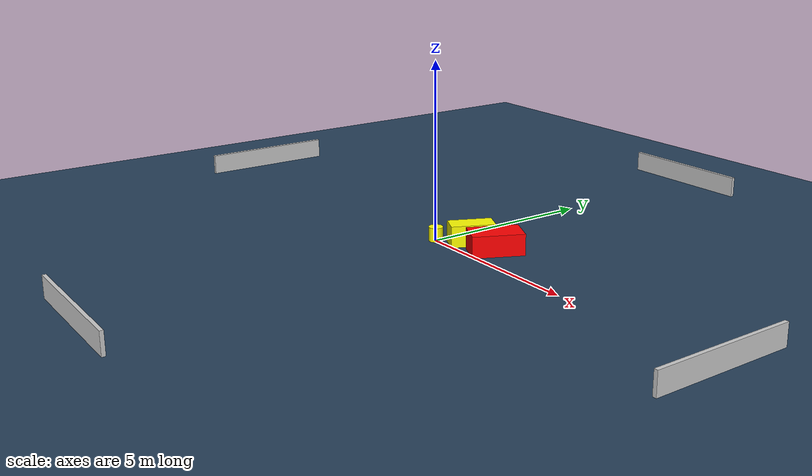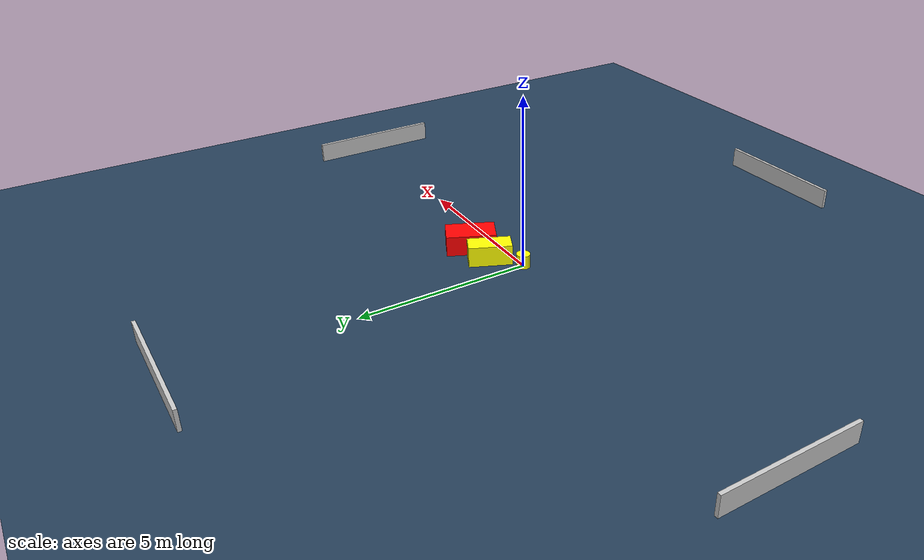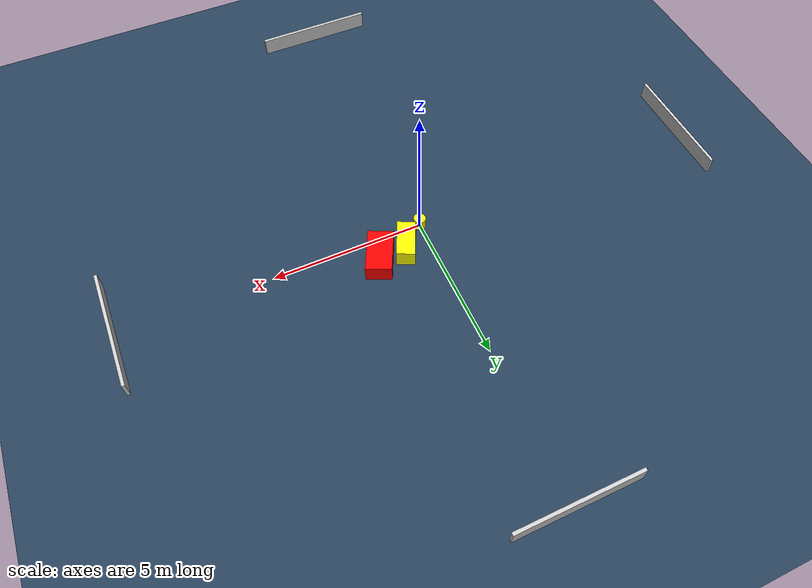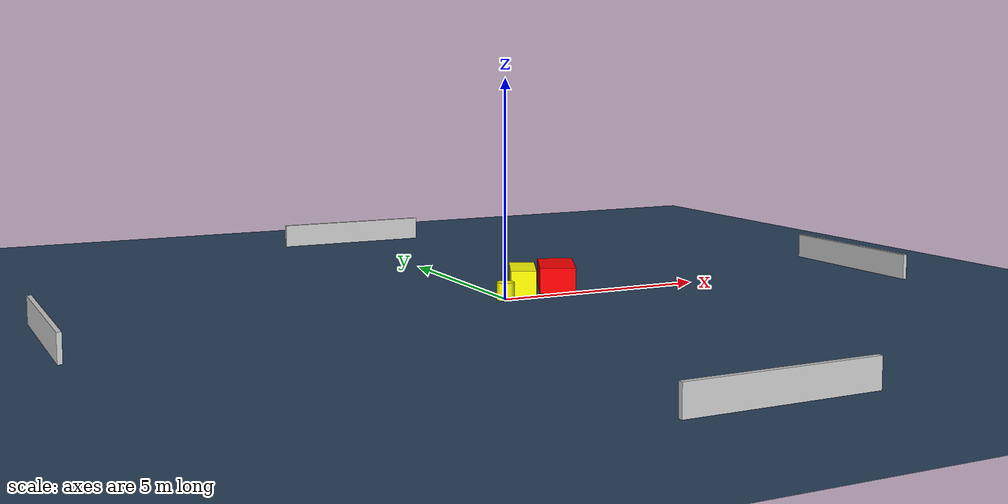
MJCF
<?xml version="1.0" ?>
<mujoco model="generated_environment">
  <option timestep="0.01" integrator="RK4" cone="elliptic"/>
  <default>
    <geom density="1"/>
  </default>
  <asset>
    <texture builtin="gradient" height="3072" name="skybox" rgb1="0.3 0.5 0.7" rgb2="0 0 0" type="skybox" width="512"/>
    <texture builtin="checker" height="300" name="groundplane" rgb1="0.2 0.3 0.4" rgb2="0.1 0.2 0.3" type="2d" width="300"/>
    <material name="groundplane" reflectance="0.2" texrepeat="5 5" texture="groundplane"/>
  </asset>
  <worldbody>
    <light dir="0 0 -1" directional="true" pos="0 0 1.5"/>
    <geom condim="3" friction="0.5 0.005 0.001" material="groundplane" name="floor" pos="0 0 0" size="0 0 0.05" type="plane"/>
    <body name="walls">
      <geom name="wall_1" condim="4" pos="-10.0 0.0 0.3" rgba="0.800000011920929 0.800000011920929 0.800000011920929 1.0" size="0.05 2.0 0.3" type="box"/>
      <geom name="wall_2" condim="4" pos="10.0 0.0 0.3" rgba="0.800000011920929 0.800000011920929 0.800000011920929 1.0" size="0.05 2.0 0.3" type="box"/>
      <geom name="wall_3" condim="4" pos="0.0 -10.0 0.3" rgba="0.800000011920929 0.800000011920929 0.800000011920929 1.0" size="2.0 0.05 0.3" type="box"/>
      <geom name="wall_4" condim="4" pos="0.0 10.0 0.3" rgba="0.800000011920929 0.800000011920929 0.800000011920929 1.0" size="2.0 0.05 0.3" type="box"/>
    </body>
    <body name="robot">
      <joint name="joint_x" type="slide" pos="0 0 0" axis="1 0 0"/>
      <joint name="joint_y" type="slide" pos="0 0 0" axis="0 1 0"/>
      <geom name="robot" type="cylinder" pos="0.0 0.0 0.2" size="0.2 0.2 0.0" mass="5.0" friction="1.0 0.005 0.0001" condim="4" rgba="1.0 1.0 0.0 1.0"/>
    </body>
    <body name="obstacle_1_movable">
      <geom name="obstacle_1_movable" condim="4" pos="0.7675212572982115 0.6432158835675357 0.3" euler="0 0 155.07111074890207" friction="0.0 0.005 0.001" rgba="1.0 1.0 0.0 1.0" size="0.2957126185290405 0.6202065927523737 0.3" type="box" mass="0.1"/>
      <joint type="free"/>
    </body>
    <body name="obstacle_2_static">
      <geom name="obstacle_2_static" condim="4" pos="1.710256919598823 0.7271030261776197 0.3" euler="0 0 64.46107319201064" friction="0.0 0.005 0.001" rgba="1.0 0.0 0.0 1.0" size="0.719662156433621 0.4168794799754103 0.3" type="box"/>
    </body>
  </worldbody>
  <actuator>
    <motor name="actuator_x" joint="joint_x" gear="1" ctrlrange="-1 1"/>
    <motor name="actuator_y" joint="joint_y" gear="1" ctrlrange="-1 1"/>
  </actuator>
</mujoco>
